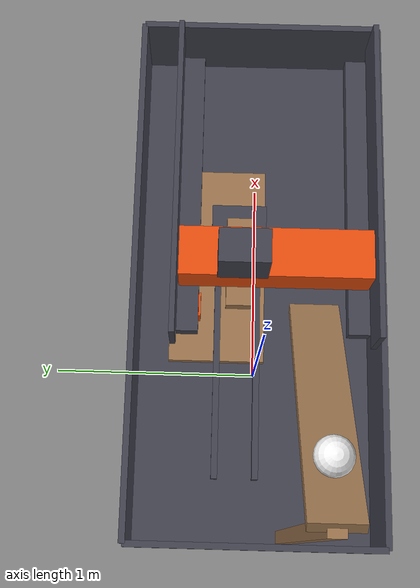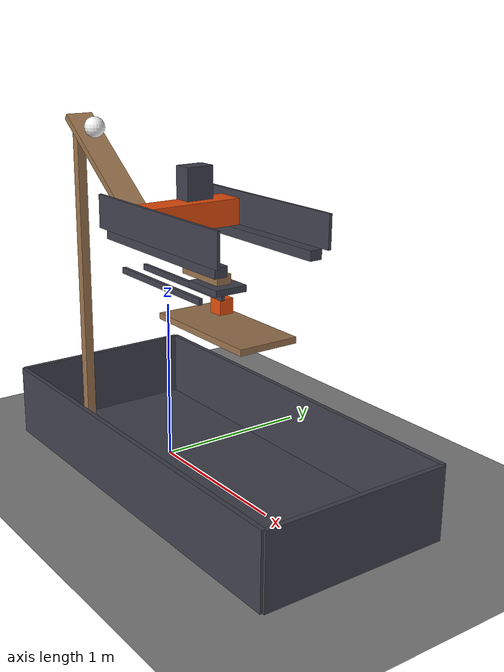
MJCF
<mujoco model="ramp_key_and_falling_bridges">
  <compiler angle="radian"/>
  <option timestep="0.002"/>
  <worldbody>
    <geom name="floor" type="plane" size="6 6 0.1" friction="0.8 0.005 0.002"/>
    <body name="bin">
      <geom name="bin_base" type="box" pos="0.45 0 0.015" size="1.3 0.6 0.015" friction="0.8 0.01 0.004" solref="0.01 1" rgba="0.25 0.25 0.3 1"/>
      <geom name="bin_near_wall" type="box" pos="-0.85 0 0.225" size="0.015 0.6 0.225" friction="0.8 0.01 0.004" solref="0.01 1" rgba="0.25 0.25 0.3 1"/>
      <geom name="bin_far_wall" type="box" pos="1.75 0 0.225" size="0.015 0.6 0.225" friction="0.8 0.01 0.004" solref="0.01 1" rgba="0.25 0.25 0.3 1"/>
      <geom name="bin_left_wall" type="box" pos="0.45 0.6 0.225" size="1.3 0.015 0.225" friction="0.8 0.01 0.004" solref="0.01 1" rgba="0.25 0.25 0.3 1"/>
      <geom name="bin_right_wall" type="box" pos="0.45 -0.6 0.225" size="1.3 0.015 0.225" friction="0.8 0.01 0.004" solref="0.01 1" rgba="0.25 0.25 0.3 1"/>
    </body>
    <body name="ramp">
      <geom name="ramp_deck" type="box" pos="-0.4 -0.15 1.78" size="0.5 0.09 0.02" euler="0 0.643501 0" friction="0.6 0.001 0.0002" rgba="0.6 0.45 0.3 1"/>
      <geom name="ramp_leg" type="box" pos="-0.8 -0.15 1.04" size="0.03 0.03 1.04" friction="0.6 0.001 0.0002" rgba="0.6 0.45 0.3 1"/>
    </body>
    <body name="left key rail">
      <geom name="left key rail" type="box" pos="0.45 0.315 1.47" size="0.55 0.04 0.03" friction="0.005 0.005 0.0001" rgba="0.25 0.25 0.3 1"/>
    </body>
    <body name="right key rail">
      <geom name="right key rail" type="box" pos="0.45 -0.315 1.47" size="0.55 0.04 0.03" friction="0.005 0.005 0.0001" rgba="0.25 0.25 0.3 1"/>
    </body>
    <body name="left key guide">
      <geom name="left key guide" type="box" pos="0.45 0.365 1.6" size="0.6 0.01 0.1" friction="0.005 0.005 0.0001" rgba="0.25 0.25 0.3 1"/>
    </body>
    <body name="right key guide">
      <geom name="right key guide" type="box" pos="0.45 -0.365 1.6" size="0.6 0.01 0.1" friction="0.005 0.005 0.0001" rgba="0.25 0.25 0.3 1"/>
    </body>
    <body name="key" pos="0.16 0 1.58">
      <freejoint/>
      <geom name="key" type="box" pos="0 0 0" size="0.09 0.35 0.08" mass="0.25" friction="0.005 0.001 0.0001" solref="0.01 1" rgba="0.9 0.3 0.05 1"/>
    </body>
    <body name="left bridge1 catcher">
      <geom name="left bridge1 catcher" type="box" pos="-0.15 0.2 1.08" size="0.45 0.0125 0.02" friction="0.8 0.005 0.0001" solref="0.01 1" rgba="0.25 0.25 0.3 1"/>
    </body>
    <body name="right bridge1 catcher">
      <geom name="right bridge1 catcher" type="box" pos="-0.15 0.04 1.08" size="0.45 0.0125 0.02" friction="0.8 0.005 0.0001" solref="0.01 1" rgba="0.25 0.25 0.3 1"/>
    </body>
    <body name="bridge1" pos="0.12 0.12 1.76">
      <freejoint/>
      <geom name="bridge1" type="box" pos="0 0 0" size="0.06 0.09 0.1" mass="2" friction="0.005 0.001 0.0001" solref="0.01 1" rgba="0.25 0.25 0.3 1"/>
    </body>
    <body name="flap" pos="0.75 0.2 0.9">
      <joint name="flap_hinge" type="hinge" pos="0 0 0" axis="0 1 0" limited="true" range="-0.872665 0" stiffness="0.7" springref="1.5708" damping="0.03" armature="0.02"/>
      <geom name="flap" type="box" pos="-0.425 0 0" size="0.425 0.2 0.02" mass="0.16" friction="0.6 0.005 0.002" solref="0.01 1" rgba="0.6 0.45 0.3 1"/>
    </body>
    <body name="bridge2 ledge">
      <geom name="bridge2 ledge" type="box" pos="0.355 0.12 1.18" size="0.14 0.11 0.02" friction="0.3 0.005 0.0001" rgba="0.25 0.25 0.3 1"/>
    </body>
    <body name="bridge2" pos="0.24 0.12 1.23">
      <freejoint/>
      <geom name="bridge2" type="box" pos="0 0 0" size="0.18 0.05 0.03" mass="0.4" friction="0.4 0.005 0.002" solref="0.01 1" rgba="0.6 0.45 0.3 1"/>
    </body>
    <body name="payload" pos="0.12 0.32 0.97">
      <freejoint/>
      <geom name="payload" type="box" pos="0 0 0" size="0.05 0.05 0.05" mass="0.06" friction="0.6 0.01 0.004" solref="0.01 1" rgba="0.9 0.3 0.05 1"/>
    </body>
    <body name="ball" pos="-0.589 -0.15 2.028">
      <freejoint/>
      <geom name="ball" type="sphere" pos="0 0 0" size="0.065" mass="1.5" condim="6" friction="0.6 0.001 0.0002" solref="0.01 1" rgba="0.95 0.95 0.95 1"/>
    </body>
  </worldbody>
  <keyframe>
    <key name="start" qpos="0.16 0 1.58 1 0 0 0 0.12 0.12 1.76 1 0 0 0 0 0.24 0.12 1.23 1 0 0 0 0.12 0.32 0.97 1 0 0 0 -0.589 -0.15 2.028 1 0 0 0" qvel="0 0 0 0 0 0 0 0 0 0 0 0 0 0 0 0 0 0 0 0 0 0 0 0 0 0 0 0 0 0 0"/>
  </keyframe>
</mujoco>
